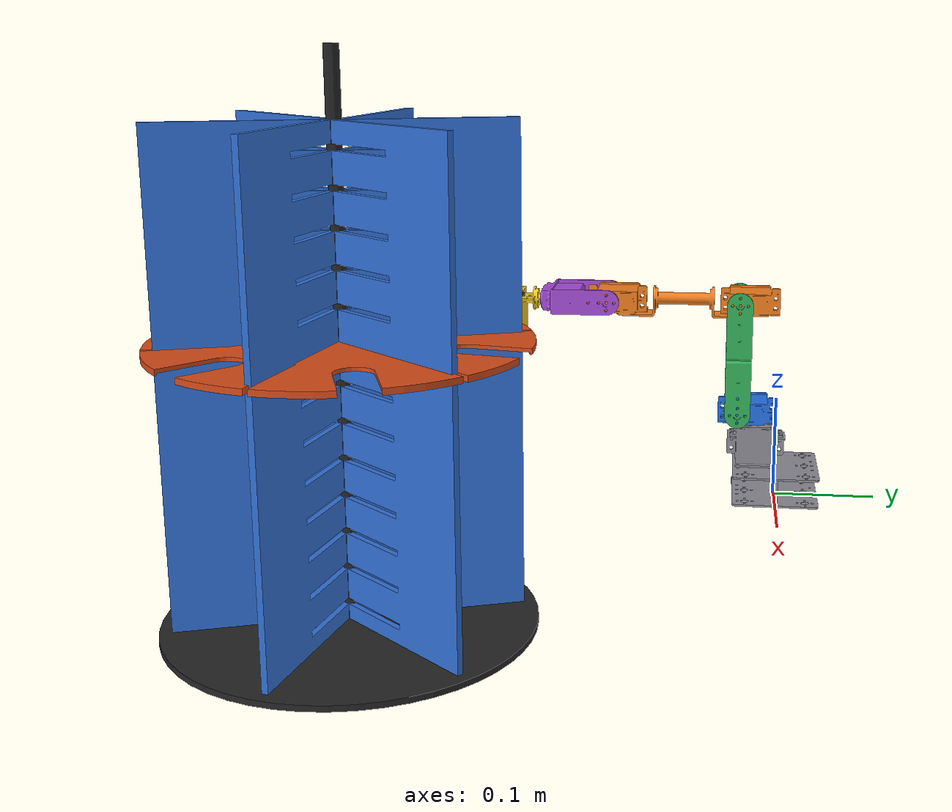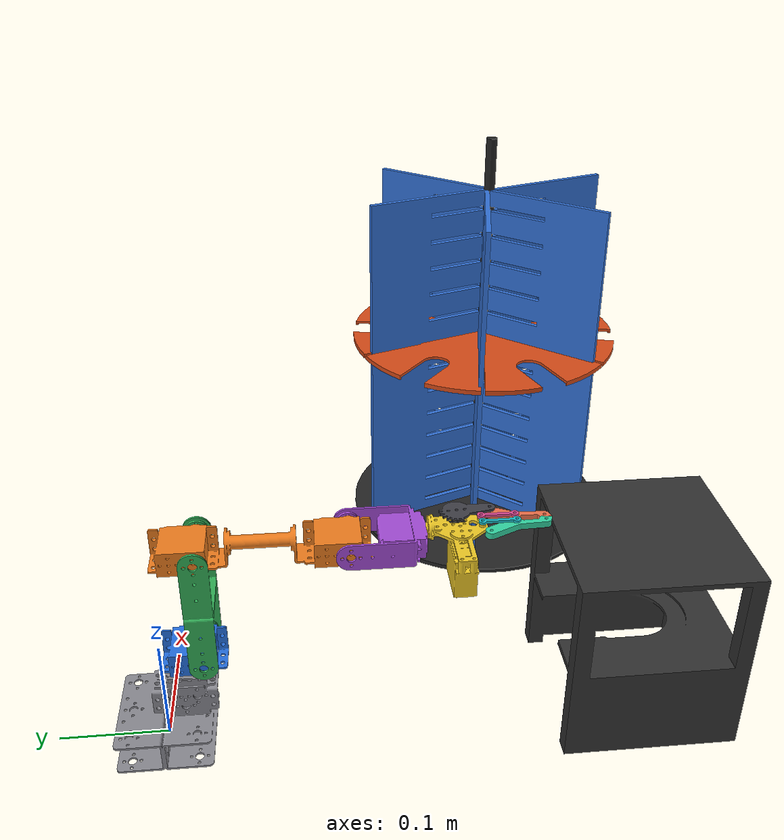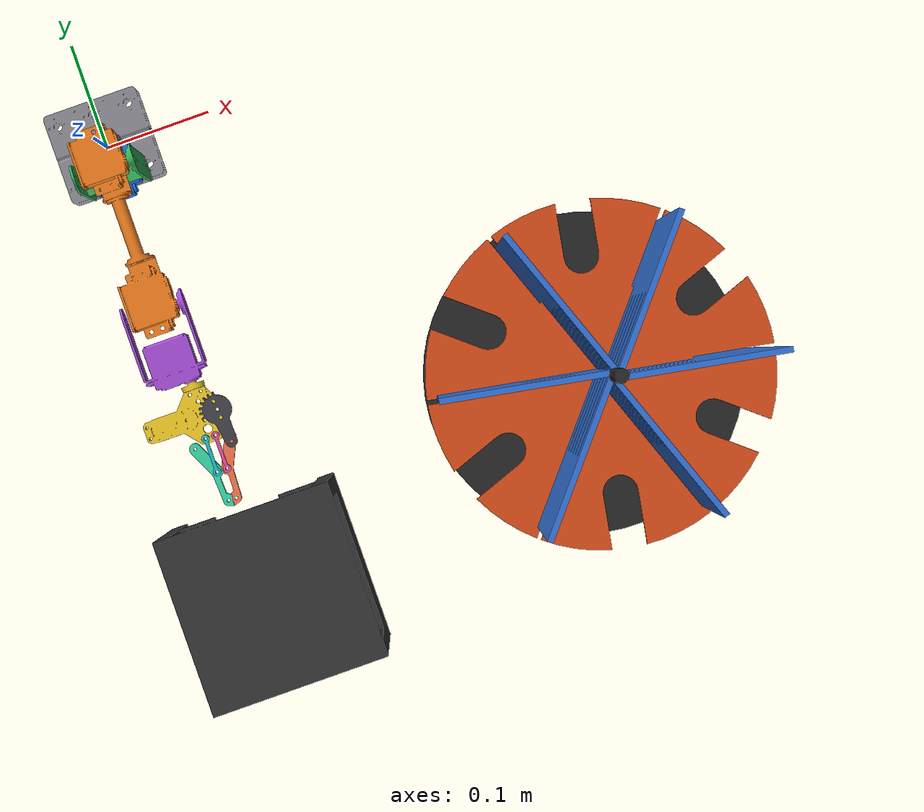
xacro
<?xml version="1.0"?>
<robot xmlns:xacro="http://www.ros.org/wiki/xacro" name="amr_system">

  <!-- SUBSYSTEM INCLUDES                                        -->

  <xacro:include
    filename="$(find robot_arm_description)/urdf/robot_arm_gazebo.urdf.xacro"/>

  <xacro:include
    filename="$(find carousel_description)/urdf/carousel_gazebo.urdf.xacro"/>

  <xacro:include
    filename="$(find camera_housing)/urdf/camera_stand_gazebo.urdf.xacro"/>

  <!-- GLOBAL WORLD FRAME                                        -->

  <link name="world"/>

  <!-- SCARA ARM                                                 -->
  <!-- Physical/reference position:                              -->
  <!-- This is the top vertex of the equilateral triangle.       -->

  <joint name="world_to_arm" type="fixed">

    <parent link="world"/>
    <child link="base_link"/>

    <origin
      xyz="0.000000 0.000000 0.000000"
      rpy="0 0 0"/>

  </joint>

  <!-- CAROUSEL                                                   -->
  <!-- Physical/reference position:                              -->
  <!-- Distance from SCARA = 0.400 m                             -->
  <!-- Distance from camera = 0.400 m                            -->

  <joint name="world_to_carousel" type="fixed">

    <parent link="world"/>
    <child link="carousel_base_link"/>

    <origin
      xyz="0.350000  -0.3464101615  0.000000"
      rpy="0 0 -0.174533"/>

  </joint>

  <!-- CAMERA HOUSING                                             -->
  <!-- Physical/reference position:                              -->
  <!-- The camera housing mesh has an internal XY offset, so the -->
  <!-- LINK origin is intentionally different from the physical  -->
  <!-- center.                                                   -->
  <!-- Camera is rotated +90 degrees about the world Z axis.     -->

  <joint name="world_to_camera" type="fixed">

    <parent link="world"/>
    <child link="camera_shousing_link"/>

    <origin
        xyz="-0.061399 -0.5164101615 0.000000"
        rpy="0 0 -1.57079632679"/>

  </joint>

  <!-- GAZEBO STATIC SYSTEMS                                     -->

  <gazebo reference="carousel_base_link">
    <static>true</static>
  </gazebo>

  <gazebo reference="camera_shousing_link">
    <static>true</static>
  </gazebo>

</robot>

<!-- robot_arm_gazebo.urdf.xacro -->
<robot xmlns:xacro="http://www.ros.org/wiki/xacro" name="robot_arm_with_gripper">

  <!-- BASE LINK -->

  <link name="base_link">
    <visual>
      <origin xyz="0 0 0" rpy="0 0 0"/>
      <geometry>
        <mesh filename="package://robot_arm_description/meshes/base_link.stl" scale="0.001 0.001 0.001"/>
      </geometry>
      <material name="mat_base">
        <color rgba="0.55 0.55 0.58 1.0"/>
      </material>
    </visual>

    <collision>
      <origin xyz="0 0 0" rpy="0 0 0"/>
      <geometry>
        <mesh filename="package://robot_arm_description/meshes/base_link.stl" scale="0.001 0.001 0.001"/>
      </geometry>
    </collision>

    <inertial>
      <origin xyz="0 0 0.038" rpy="0 0 0"/>
      <mass value="5.0"/>
      <inertia ixx="0.01" ixy="0.0" ixz="0.0" iyy="0.01" iyz="0.0" izz="0.01"/>
    </inertial>
  </link>

  <gazebo reference="base_link">
    <material>Gazebo/Grey</material>
  </gazebo>

  <!-- LINK 1 -->

  <link name="link_1">
    <visual>
      <origin xyz="-0.000000 0.029745 -0.071600" rpy="0 0 0"/>
      <geometry>
        <mesh filename="package://robot_arm_description/meshes/link_1.stl" scale="0.001 0.001 0.001"/>
      </geometry>
      <material name="mat_link_1">
        <color rgba="0.15 0.45 0.90 1.0"/>
      </material>
    </visual>

    <collision>
      <origin xyz="-0.000000 0.029745 -0.071600" rpy="0 0 0"/>
      <geometry>
        <mesh filename="package://robot_arm_description/meshes/link_1.stl" scale="0.001 0.001 0.001"/>
      </geometry>
    </collision>

    <inertial>
      <origin xyz="0 0 0" rpy="0 0 0"/>
      <mass value="1.0"/>
      <inertia ixx="0.003" ixy="0.0" ixz="0.0" iyy="0.003" iyz="0.0" izz="0.003"/>
    </inertial>
  </link>

  <!-- LINK 2 -->

  <link name="link_2">
    <visual>
      <origin xyz="-0.008600 0.039745 -0.090850" rpy="0 0 0"/>
      <geometry>
        <mesh filename="package://robot_arm_description/meshes/link_2.stl" scale="0.001 0.001 0.001"/>
      </geometry>
      <material name="mat_link_2">
        <color rgba="0.20 0.70 0.35 1.0"/>
      </material>
    </visual>

    <collision>
      <origin xyz="-0.008600 0.039745 -0.090850" rpy="0 0 0"/>
      <geometry>
        <mesh filename="package://robot_arm_description/meshes/link_2.stl" scale="0.001 0.001 0.001"/>
      </geometry>
    </collision>

    <inertial>
      <origin xyz="0 0 0" rpy="0 0 0"/>
      <mass value="0.8"/>
      <inertia ixx="0.002" ixy="0.0" ixz="0.0" iyy="0.002" iyz="0.0" izz="0.002"/>
    </inertial>
  </link>

  <!-- LINK 3 -->

  <link name="link_3">
    <visual>
      <origin xyz="-0.008600 0.039745 -0.201340" rpy="0 0 0"/>
      <geometry>
        <mesh filename="package://robot_arm_description/meshes/link_3.stl" scale="0.001 0.001 0.001"/>
      </geometry>
      <material name="mat_link_3">
        <color rgba="0.95 0.50 0.12 1.0"/>
      </material>
    </visual>

    <collision>
      <origin xyz="-0.008600 0.039745 -0.201340" rpy="0 0 0"/>
      <geometry>
        <mesh filename="package://robot_arm_description/meshes/link_3.stl" scale="0.001 0.001 0.001"/>
      </geometry>
    </collision>

    <inertial>
      <origin xyz="0 0 0" rpy="0 0 0"/>
      <mass value="0.8"/>
      <inertia ixx="0.002" ixy="0.0" ixz="0.0" iyy="0.002" iyz="0.0" izz="0.002"/>
    </inertial>
  </link>

  <!-- LINK 4 -->

  <link name="link_4">
    <visual>
      <origin xyz="-0.008600 0.170236 -0.201340" rpy="0 0 0"/>
      <geometry>
        <mesh filename="package://robot_arm_description/meshes/link_4.stl" scale="0.001 0.001 0.001"/>
      </geometry>
      <material name="mat_link_4">
        <color rgba="0.65 0.30 0.85 1.0"/>
      </material>
    </visual>

    <collision>
      <origin xyz="-0.008600 0.170236 -0.201340" rpy="0 0 0"/>
      <geometry>
        <mesh filename="package://robot_arm_description/meshes/link_4.stl" scale="0.001 0.001 0.001"/>
      </geometry>
    </collision>

    <inertial>
      <origin xyz="0 0 0" rpy="0 0 0"/>
      <mass value="0.5"/>
      <inertia ixx="0.001" ixy="0.0" ixz="0.0" iyy="0.001" iyz="0.0" izz="0.001"/>
    </inertial>
  </link>

  <!-- LINK 5 -->
  <!-- LINK 5 + GRIPPER GEAR ASSEMBLY -->

  <link name="link_5">
    <visual>
      <origin xyz="-0.018601 0.237482 -0.201339" rpy="0 0 0"/>
      <geometry>
        <mesh filename="package://robot_arm_description/meshes/link_5.stl" scale="0.001 0.001 0.001"/>
      </geometry>
      <material name="mat_link_5">
        <color rgba="0.95 0.80 0.15 1.0"/>
      </material>
    </visual>

    <!-- Integrated Gripper Gear visual element on Link 5 -->
    <visual>
      <origin
        xyz="-0.018601 0.237482 -0.201339"
        rpy="0 0 0"/>

      <geometry>
        <mesh
          filename="package://robot_arm_description/meshes/gripper_gear.stl"
          scale="0.001 0.001 0.001"/>
      </geometry>

      <material name="mat_gripper_gear">
        <color rgba="0.25 0.25 0.28 1.0"/>
      </material>
    </visual>

    <collision>
      <origin xyz="-0.018601 0.237482 -0.201339" rpy="0 0 0"/>
      <geometry>
        <mesh filename="package://robot_arm_description/meshes/link_5.stl" scale="0.001 0.001 0.001"/>
      </geometry>
    </collision>

    <inertial>
      <origin xyz="0 0 0" rpy="0 0 0"/>
      <mass value="0.4"/>
      <inertia ixx="0.0008" ixy="0.0" ixz="0.0" iyy="0.0008" iyz="0.0" izz="0.0008"/>
      <mass value="0.45"/>
      <inertia ixx="0.0009" ixy="0.0" ixz="0.0" iyy="0.0009" iyz="0.0" izz="0.0009"/>
    </inertial>
  </link>

  <!-- ARM JOINTS WITH DAMPING & FRICTION                        -->

  <joint name="joint_1" type="revolute">
    <parent link="base_link"/>
    <child link="link_1"/>
    <origin xyz="0.000000 -0.029745 0.071600" rpy="0 0 0"/>
    <axis xyz="0 0 1"/>
    <limit lower="-3.14159" upper="3.14159" effort="50.0" velocity="2.0"/>
    <dynamics damping="50.0" friction="10.0"/>
  </joint>

  <joint name="joint_2" type="revolute">
    <parent link="link_1"/>
    <child link="link_2"/>
    <origin xyz="0.008600 -0.010000 0.019250" rpy="0 0 0"/>
    <axis xyz="1 0 0"/>
    <limit lower="-3.14159" upper="3.14159" effort="50.0" velocity="2.0"/>
    <dynamics damping="50.0" friction="10.0"/>
  </joint>

  <joint name="joint_3" type="revolute">
    <parent link="link_2"/>
    <child link="link_3"/>
    <origin xyz="0.000000 0.000000 0.110490" rpy="0 0 0"/>
    <axis xyz="1 0 0"/>
    <limit lower="-3.14159" upper="3.14159" effort="50.0" velocity="2.0"/>
    <dynamics damping="50.0" friction="10.0"/>
  </joint>

  <joint name="joint_4" type="revolute">
    <parent link="link_3"/>
    <child link="link_4"/>
    <origin xyz="0.000000 -0.130491 0.000000" rpy="0 0 0"/>
    <axis xyz="1 0 0"/>
    <limit lower="-3.14159" upper="3.14159" effort="50.0" velocity="2.0"/>
    <dynamics damping="50.0" friction="10.0"/>
  </joint>

  <joint name="joint_5" type="revolute">
    <parent link="link_4"/>
    <child link="link_5"/>
    <origin xyz="0.010001 -0.067246 -0.000001" rpy="0 0 0"/>
    <axis xyz="0 1 0"/>
    <limit lower="-3.14159" upper="3.14159" effort="50.0" velocity="2.0"/>
    <dynamics damping="50.0" friction="10.0"/>
  </joint>

  <!-- LEFT GRIPPER LINK -->
  <!-- LEFT GRIPPER LINK (VISUAL ONLY FOR LINKAGE KINEMATICS)    -->

  <link name="left_gripper_link">
    <visual>
      <origin xyz="-0.014123 0.301592 -0.205839" rpy="0 0 0"/>
      <geometry>
        <mesh filename="package://robot_arm_description/meshes/left_gripper_link.stl" scale="0.001 0.001 0.001"/>
      </geometry>
      <material name="mat_left_gripper">
        <color rgba="0.10 0.75 0.80 1.0"/>
      </material>
    </visual>

    <collision>
      <origin xyz="-0.014123 0.301592 -0.205839" rpy="0 0 0"/>
      <geometry>
        <mesh filename="package://robot_arm_description/meshes/left_gripper_link.stl" scale="0.001 0.001 0.001"/>
      </geometry>
    </collision>

    <inertial>
      <origin xyz="0 0 0" rpy="0 0 0"/>
      <mass value="0.05"/>
      <inertia ixx="0.00005" ixy="0.0" ixz="0.0" iyy="0.00005" iyz="0.0" izz="0.00005"/>
      <mass value="0.02"/>
      <inertia ixx="0.00002" ixy="0.0" ixz="0.0" iyy="0.00002" iyz="0.0" izz="0.00002"/>
    </inertial>
  </link>

  <joint name="left_gripper_link_joint" type="revolute">
    <parent link="link_5"/>
    <child link="left_gripper_link"/>

    <origin
      xyz="-0.004478 -0.064110 0.004500"
      rpy="0 0 0"/>

    <axis xyz="0 0 1"/>

    <limit
      lower="-0.8"
      upper="0.8"
      effort="20.0"
      velocity="2.0"/>

    <dynamics damping="0.1" friction="0.05"/>
  </joint>

  <!-- RIGHT GRIPPER LINK -->
  <!-- RIGHT GRIPPER LINK (VISUAL ONLY FOR LINKAGE KINEMATICS)   -->

  <link name="right_gripper_link">
    <visual>
      <origin xyz="-0.023127 0.301587 -0.205839" rpy="0 0 0"/>
      <geometry>
        <mesh filename="package://robot_arm_description/meshes/right_gripper_link.stl" scale="0.001 0.001 0.001"/>
      </geometry>
      <material name="mat_right_gripper">
        <color rgba="0.90 0.30 0.60 1.0"/>
      </material>
    </visual>

    <collision>
      <origin xyz="-0.023127 0.301587 -0.205839" rpy="0 0 0"/>
      <geometry>
        <mesh filename="package://robot_arm_description/meshes/right_gripper_link.stl" scale="0.001 0.001 0.001"/>
      </geometry>
    </collision>

    <inertial>
      <origin xyz="0 0 0" rpy="0 0 0"/>
      <mass value="0.05"/>
      <inertia ixx="0.00005" ixy="0.0" ixz="0.0" iyy="0.00005" iyz="0.0" izz="0.00005"/>
      <mass value="0.02"/>
      <inertia ixx="0.00002" ixy="0.0" ixz="0.0" iyy="0.00002" iyz="0.0" izz="0.00002"/>
    </inertial>
  </link>

  <joint name="right_gripper_link_joint" type="revolute">
    <parent link="link_5"/>
    <child link="right_gripper_link"/>

    <origin
      xyz="0.004526 -0.064105 0.004500"
      rpy="0 0 0"/>

    <axis xyz="0 0 1"/>

    <limit
      lower="-0.8"
      upper="0.8"
      effort="20.0"
      velocity="2.0"/>

    <dynamics damping="0.1" friction="0.05"/>
  </joint>

  <!-- LEFT FINGER -->
  <!-- LEFT FINGER (ACTIVE COLLISION SURFACE FOR GRASPING)       -->

  <link name="left_finger">
    <visual>
<origin xyz="-0.012620 0.306298 -0.199839" rpy="0 0 0"/>
      <geometry>
        <mesh filename="package://robot_arm_description/meshes/left_finger.stl" scale="0.001 0.001 0.001"/>
      </geometry>
      <material name="mat_left_finger">
        <color rgba="0.20 0.85 0.65 1.0"/>
      </material>
    </visual>

    <collision>
      <origin xyz="-0.002620 0.292298 -0.199839" rpy="0 0 0"/>
      <geometry>
        <mesh filename="package://robot_arm_description/meshes/left_finger.stl" scale="0.001 0.001 0.001"/>
      </geometry>
    </collision>

    <inertial>
      <origin xyz="0 0 0" rpy="0 0 0"/>
      <mass value="0.05"/>
      <inertia ixx="0.00005" ixy="0.0" ixz="0.0" iyy="0.00005" iyz="0.0" izz="0.00005"/>
    </inertial>
  </link>

  <joint name="left_finger_joint" type="revolute">
    <parent link="link_5"/>
    <child link="left_finger"/>
    <origin xyz="-0.005981 -0.068816 -0.001500" rpy="0 0 0"/>
    <axis xyz="0 0 1"/>
    <limit lower="-0.8" upper="0.8" effort="20.0" velocity="2.0"/>
    <dynamics damping="0.1" friction="0.05"/>
  </joint>

  <!-- RIGHT FINGER -->
  <!-- RIGHT FINGER (ACTIVE COLLISION SURFACE FOR GRASPING)      -->

  <link name="right_finger">
    <visual>
<origin xyz="-0.044280 0.306093 -0.202839" rpy="0 0 0"/>
      <geometry>
        <mesh filename="package://robot_arm_description/meshes/right_finger.stl" scale="0.001 0.001 0.001"/>
      </geometry>
      <material name="mat_right_finger">
        <color rgba="0.95 0.45 0.30 1.0"/>
      </material>
    </visual>

    <collision>
      <origin xyz="-0.034280 0.292093 -0.202839" rpy="0 0 0"/>
      <geometry>
        <mesh filename="package://robot_arm_description/meshes/right_finger.stl" scale="0.001 0.001 0.001"/>
      </geometry>
    </collision>

    <inertial>
      <origin xyz="0 0 0" rpy="0 0 0"/>
      <mass value="0.05"/>
      <inertia ixx="0.00005" ixy="0.0" ixz="0.0" iyy="0.00005" iyz="0.0" izz="0.00005"/>
    </inertial>
  </link>

  <joint name="right_finger_joint" type="revolute">
    <parent link="link_5"/>
    <child link="right_finger"/>

    <origin
      xyz="0.025679 -0.068611 0.001500"
      rpy="0 0 0"/>

    <axis xyz="0 0 1"/>

    <limit
      lower="-0.8"
      upper="0.8"
      effort="20.0"
      velocity="2.0"/>

    <dynamics damping="0.1" friction="0.05"/>
  </joint>

  <!-- Disable self collision exploding between arm links -->
  <!-- Disable self collision popping between arm links -->
  <gazebo>
    <self_collide>false</self_collide>
  </gazebo>

  <!-- ROS 2 CONTROL                                             -->

  <ros2_control name="GazeboSystem" type="system">

    <hardware>
      <plugin>gz_ros2_control/GazeboSimSystem</plugin>
    </hardware>

    <!-- JOINT 1                  -->

    <joint name="joint_1">

      <command_interface name="position">
        <param name="min">-3.14159</param>
        <param name="max">3.14159</param>
      </command_interface>

      <state_interface name="position"/>
      <state_interface name="velocity"/>

    </joint>

    <!-- JOINT 2                  -->

    <joint name="joint_2">

      <command_interface name="position">
        <param name="min">-3.14159</param>
        <param name="max">3.14159</param>
      </command_interface>

      <state_interface name="position"/>
      <state_interface name="velocity"/>

    </joint>

    <!-- JOINT 3                  -->

    <joint name="joint_3">

      <command_interface name="position">
        <param name="min">-3.14159</param>
        <param name="max">3.14159</param>
      </command_interface>

      <state_interface name="position"/>
      <state_interface name="velocity"/>

    </joint>

    <!-- JOINT 4                  -->

    <joint name="joint_4">

      <command_interface name="position">
        <param name="min">-3.14159</param>
        <param name="max">3.14159</param>
      </command_interface>

      <state_interface name="position"/>
      <state_interface name="velocity"/>

    </joint>

    <!-- JOINT 5                  -->

    <joint name="joint_5">

      <command_interface name="position">
        <param name="min">-3.14159</param>
        <param name="max">3.14159</param>
      </command_interface>

      <state_interface name="position"/>
      <state_interface name="velocity"/>

    </joint>

    <joint name="left_finger_joint">
      <command_interface name="position">
        <param name="min">-0.8</param>
        <param name="max">0.8</param>
      </command_interface>
      <state_interface name="position"/>
      <state_interface name="velocity"/>
    </joint>

    <joint name="right_finger_joint">
      <command_interface name="position">
        <param name="min">-0.8</param>
        <param name="max">0.8</param>
      </command_interface>
      <state_interface name="position"/>
      <state_interface name="velocity"/>
    </joint>

    <joint name="left_gripper_link_joint">
      <command_interface name="position">
        <param name="min">-0.8</param>
        <param name="max">0.8</param>
      </command_interface>
      <state_interface name="position"/>
      <state_interface name="velocity"/>
    </joint>

    <joint name="right_gripper_link_joint">
      <command_interface name="position">
        <param name="min">-0.8</param>
        <param name="max">0.8</param>
      </command_interface>
      <state_interface name="position"/>
      <state_interface name="velocity"/>
    </joint>

  </ros2_control>

  <!-- GAZEBO ROS 2 CONTROL PLUGIN                              -->

  <gazebo>

    <plugin
      filename="gz_ros2_control-system"
      name="gz_ros2_control::GazeboSimROS2ControlPlugin">

      <parameters>
        $(find robot_arm_description)/config/arm_controllers.yaml
      </parameters>

      <controller_manager_name>
        controller_manager
      </controller_manager_name>

    </plugin>

  </gazebo>

</robot>

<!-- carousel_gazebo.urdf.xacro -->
<robot xmlns:xacro="http://www.ros.org/wiki/xacro" name="carousel">

  <!-- MATERIALS                                                  -->

  <material name="base_color">
    <color rgba="0.15 0.15 0.15 1.0"/>
  </material>

  <material name="holder_color">
    <color rgba="0.20 0.45 0.85 1.0"/>
  </material>

  <material name="plate_color">
    <color rgba="0.85 0.30 0.10 1.0"/>
  </material>

  <!-- BASE + CENTRAL SHAFT                                      -->

  <link name="carousel_base_link">

    <visual>
      <origin xyz="0 0 0" rpy="1.57079632679 0 0"/>
      <geometry>
        <mesh filename="package://carousel_description/meshes/carousal_base.stl" scale="0.001 0.001 0.001"/>
      </geometry>
      <material name="base_color"/>
    </visual>

    <collision>
      <origin xyz="0 0 0" rpy="1.57079632679 0 0"/>
      <geometry>
        <mesh filename="package://carousel_description/meshes/carousal_base.stl" scale="0.001 0.001 0.001"/>
      </geometry>
    </collision>

    <inertial>
      <origin xyz="0 0 0" rpy="0 0 0"/>
      <mass value="5.0"/>
      <inertia ixx="0.05" ixy="0.0" ixz="0.0" iyy="0.05" iyz="0.0" izz="0.05"/>
    </inertial>

  </link>

  <!-- HOLDER 1                                                   -->

  <link name="holder_1">
    <visual>
      <origin xyz="0 0 0" rpy="1.57079632679 0 0"/>
      <geometry>
        <mesh filename="package://carousel_description/meshes/carousal_stand.stl" scale="0.001 0.001 0.001"/>
      </geometry>
      <material name="holder_color"/>
    </visual>
    <collision>
      <origin xyz="0 0 0" rpy="1.57079632679 0 0"/>
      <geometry>
        <mesh filename="package://carousel_description/meshes/carousal_stand.stl" scale="0.001 0.001 0.001"/>
      </geometry>
    </collision>
    <inertial>
      <origin xyz="0 0 0" rpy="0 0 0"/>
      <mass value="0.2"/>
      <inertia ixx="0.001" ixy="0.0" ixz="0.0" iyy="0.001" iyz="0.0" izz="0.001"/>
    </inertial>
  </link>

  <joint name="holder_1_joint" type="fixed">
    <parent link="carousel_base_link"/>
    <child link="holder_1"/>
    <origin xyz="0.070 0 0.200" rpy="0 0 -1.57079632679"/>
  </joint>

  <!-- HOLDER 2                                                   -->

  <link name="holder_2">
    <visual>
      <origin xyz="0 0 0" rpy="1.57079632679 0 0"/>
      <geometry>
        <mesh filename="package://carousel_description/meshes/carousal_stand.stl" scale="0.001 0.001 0.001"/>
      </geometry>
      <material name="holder_color"/>
    </visual>
    <collision>
      <origin xyz="0 0 0" rpy="1.57079632679 0 0"/>
      <geometry>
        <mesh filename="package://carousel_description/meshes/carousal_stand.stl" scale="0.001 0.001 0.001"/>
      </geometry>
    </collision>
    <inertial>
      <origin xyz="0 0 0" rpy="0 0 0"/>
      <mass value="0.2"/>
      <inertia ixx="0.001" ixy="0.0" ixz="0.0" iyy="0.001" iyz="0.0" izz="0.001"/>
    </inertial>
  </link>

  <joint name="holder_2_joint" type="fixed">
    <parent link="carousel_base_link"/>
    <child link="holder_2"/>
    <origin xyz="0.035 0.0606218 0.200" rpy="0 0 -0.52359877560"/>
  </joint>

  <!-- HOLDER 3                                                   -->

  <link name="holder_3">
    <visual>
      <origin xyz="0 0 0" rpy="1.57079632679 0 0"/>
      <geometry>
        <mesh filename="package://carousel_description/meshes/carousal_stand.stl" scale="0.001 0.001 0.001"/>
      </geometry>
      <material name="holder_color"/>
    </visual>
    <collision>
      <origin xyz="0 0 0" rpy="1.57079632679 0 0"/>
      <geometry>
        <mesh filename="package://carousel_description/meshes/carousal_stand.stl" scale="0.001 0.001 0.001"/>
      </geometry>
    </collision>
    <inertial>
      <origin xyz="0 0 0" rpy="0 0 0"/>
      <mass value="0.2"/>
      <inertia ixx="0.001" ixy="0.0" ixz="0.0" iyy="0.001" iyz="0.0" izz="0.001"/>
    </inertial>
  </link>

  <joint name="holder_3_joint" type="fixed">
    <parent link="carousel_base_link"/>
    <child link="holder_3"/>
    <origin xyz="-0.035 0.0606218 0.200" rpy="0 0 0.52359877560"/>
  </joint>

  <!-- HOLDER 4                                                   -->

  <link name="holder_4">
    <visual>
      <origin xyz="0 0 0" rpy="1.57079632679 0 0"/>
      <geometry>
        <mesh filename="package://carousel_description/meshes/carousal_stand.stl" scale="0.001 0.001 0.001"/>
      </geometry>
      <material name="holder_color"/>
    </visual>
    <collision>
      <origin xyz="0 0 0" rpy="1.57079632679 0 0"/>
      <geometry>
        <mesh filename="package://carousel_description/meshes/carousal_stand.stl" scale="0.001 0.001 0.001"/>
      </geometry>
    </collision>
    <inertial>
      <origin xyz="0 0 0" rpy="0 0 0"/>
      <mass value="0.2"/>
      <inertia ixx="0.001" ixy="0.0" ixz="0.0" iyy="0.001" iyz="0.0" izz="0.001"/>
    </inertial>
  </link>

  <joint name="holder_4_joint" type="fixed">
    <parent link="carousel_base_link"/>
    <child link="holder_4"/>
    <origin xyz="-0.070 0 0.200" rpy="0 0 1.57079632679"/>
  </joint>

  <!-- HOLDER 5                                                   -->

  <link name="holder_5">
    <visual>
      <origin xyz="0 0 0" rpy="1.57079632679 0 0"/>
      <geometry>
        <mesh filename="package://carousel_description/meshes/carousal_stand.stl" scale="0.001 0.001 0.001"/>
      </geometry>
      <material name="holder_color"/>
    </visual>
    <collision>
      <origin xyz="0 0 0" rpy="1.57079632679 0 0"/>
      <geometry>
        <mesh filename="package://carousel_description/meshes/carousal_stand.stl" scale="0.001 0.001 0.001"/>
      </geometry>
    </collision>
    <inertial>
      <origin xyz="0 0 0" rpy="0 0 0"/>
      <mass value="0.2"/>
      <inertia ixx="0.001" ixy="0.0" ixz="0.0" iyy="0.001" iyz="0.0" izz="0.001"/>
    </inertial>
  </link>

  <joint name="holder_5_joint" type="fixed">
    <parent link="carousel_base_link"/>
    <child link="holder_5"/>
    <origin xyz="-0.035 -0.0606218 0.200" rpy="0 0 2.61799387799"/>
  </joint>

  <!-- HOLDER 6                                                   -->

  <link name="holder_6">
    <visual>
      <origin xyz="0 0 0" rpy="1.57079632679 0 0"/>
      <geometry>
        <mesh filename="package://carousel_description/meshes/carousal_stand.stl" scale="0.001 0.001 0.001"/>
      </geometry>
      <material name="holder_color"/>
    </visual>
    <collision>
      <origin xyz="0 0 0" rpy="1.57079632679 0 0"/>
      <geometry>
        <mesh filename="package://carousel_description/meshes/carousal_stand.stl" scale="0.001 0.001 0.001"/>
      </geometry>
    </collision>
    <inertial>
      <origin xyz="0 0 0" rpy="0 0 0"/>
      <mass value="0.2"/>
      <inertia ixx="0.001" ixy="0.0" ixz="0.0" iyy="0.001" iyz="0.0" izz="0.001"/>
    </inertial>
  </link>

  <joint name="holder_6_joint" type="fixed">
    <parent link="carousel_base_link"/>
    <child link="holder_6"/>
    <origin xyz="0.035 -0.0606218 0.200" rpy="0 0 -2.61799387799"/>
  </joint>

  <!-- TOP CIRCULAR PLATE                                        -->

  <link name="top_plate">
    <visual>
      <origin xyz="0 0 0" rpy="1.57079632679 0 0"/>
      <geometry>
        <mesh filename="package://carousel_description/meshes/holder_plates.stl" scale="0.001 0.001 0.001"/>
      </geometry>
      <material name="plate_color"/>
    </visual>
    <collision>
      <origin xyz="0 0 0" rpy="1.57079632679 0 0"/>
      <geometry>
        <mesh filename="package://carousel_description/meshes/holder_plates.stl" scale="0.001 0.001 0.001"/>
      </geometry>
    </collision>
    <inertial>
      <origin xyz="0 0 0" rpy="0 0 0"/>
      <mass value="0.5"/>
      <inertia ixx="0.002" ixy="0.0" ixz="0.0" iyy="0.002" iyz="0.0" izz="0.002"/>
    </inertial>
  </link>

  <joint name="top_plate_joint" type="fixed">
    <parent link="carousel_base_link"/>
    <child link="top_plate"/>
    <origin xyz="0 0 0.2275" rpy="0 0 0.5235987756"/>
  </joint>

  <gazebo reference="carousel_base_link">
    <material>Gazebo/DarkGrey</material>
    <visual>
      <material>
        <ambient>0.15 0.15 0.15 1.0</ambient>
        <diffuse>0.15 0.15 0.15 1.0</diffuse>
        <specular>0.5 0.5 0.5 1.0</specular>
      </material>
    </visual>
  </gazebo>

</robot>

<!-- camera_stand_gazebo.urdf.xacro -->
<robot xmlns:xacro="http://www.ros.org/wiki/xacro" name="camera_shousing">

  <link name="camera_shousing_link">

    <visual>
      <origin xyz="0 0 0" rpy="1.57079632679 0 0"/>
      <geometry>
        <mesh filename="package://camera_housing/meshes/camera_shousing.stl" scale="0.001 0.001 0.001"/>
      </geometry>
      <material name="mat_camera">
        <color rgba="0.2 0.2 0.2 1.0"/>
      </material>
    </visual>

    <collision>
      <origin xyz="0 0 0" rpy="1.57079632679 0 0"/>
      <geometry>
        <mesh filename="package://camera_housing/meshes/camera_shousing.stl" scale="0.001 0.001 0.001"/>
      </geometry>
    </collision>

    <inertial>
      <origin xyz="0 0 0" rpy="0 0 0"/>
      <mass value="1.5"/>
      <inertia ixx="0.01" ixy="0.0" ixz="0.0" iyy="0.01" iyz="0.0" izz="0.01"/>
    </inertial>

  </link>

  <gazebo reference="camera_shousing_link">
    <material>Gazebo/Grey</material>
    <visual>
      <material>
        <ambient>0.2 0.2 0.2 1.0</ambient>
        <diffuse>0.2 0.2 0.2 1.0</diffuse>
        <specular>0.5 0.5 0.5 1.0</specular>
      </material>
    </visual>
  </gazebo>

</robot>
